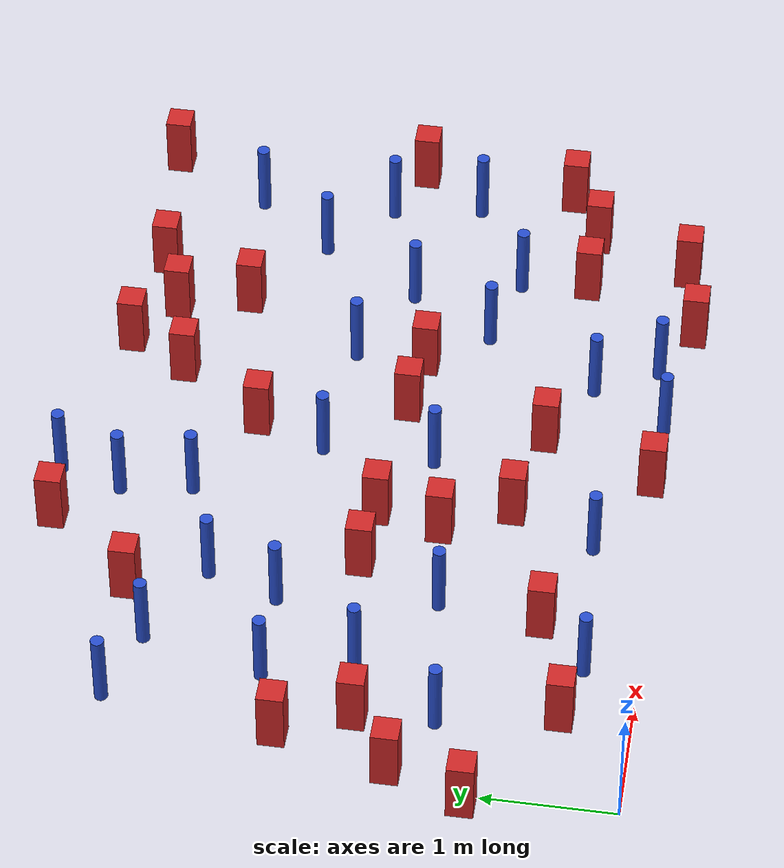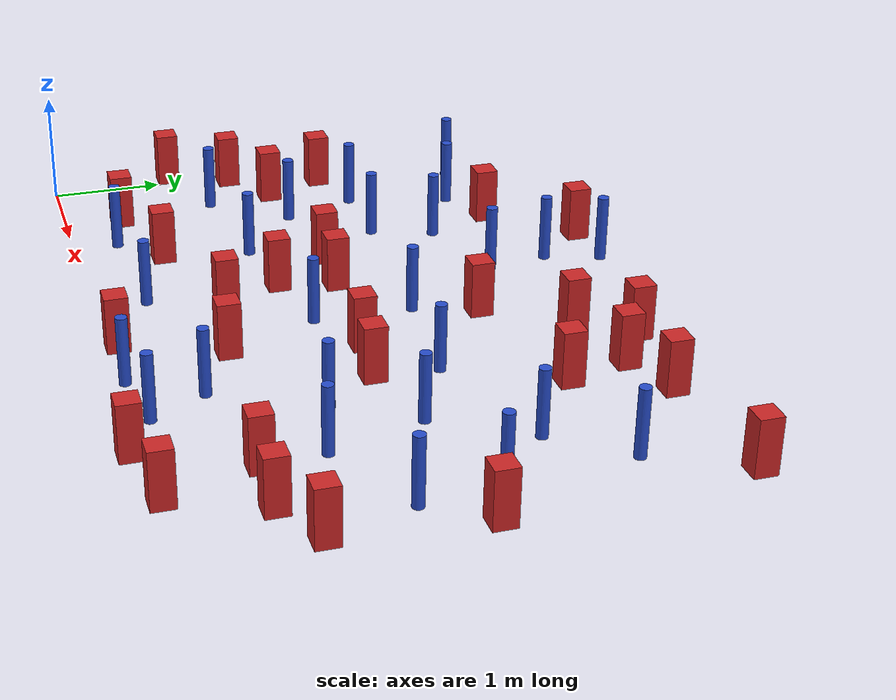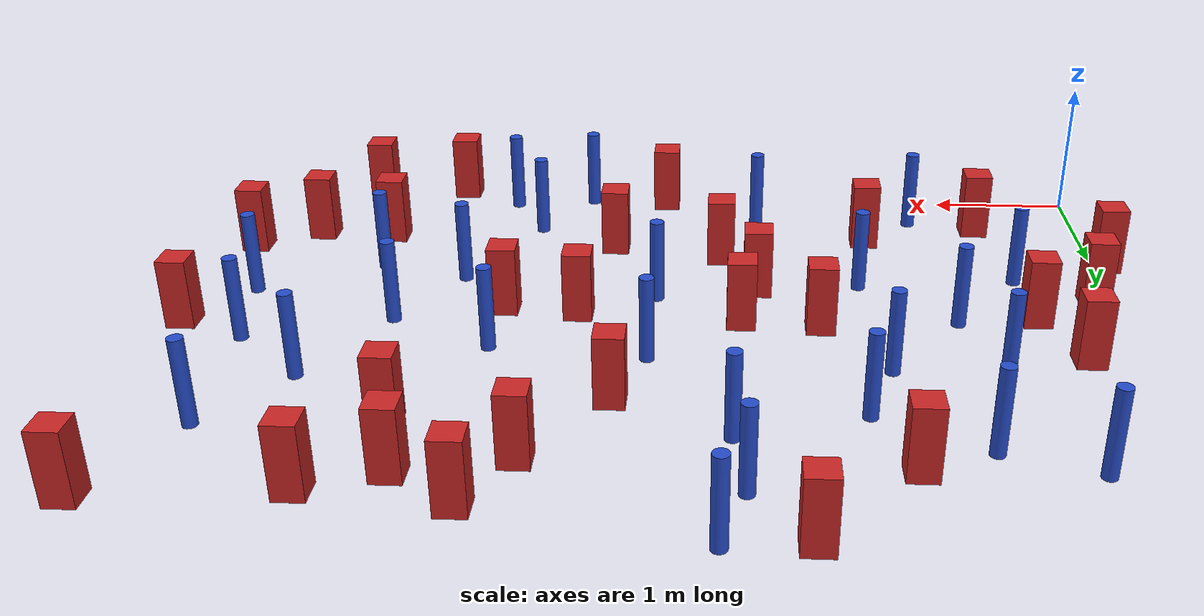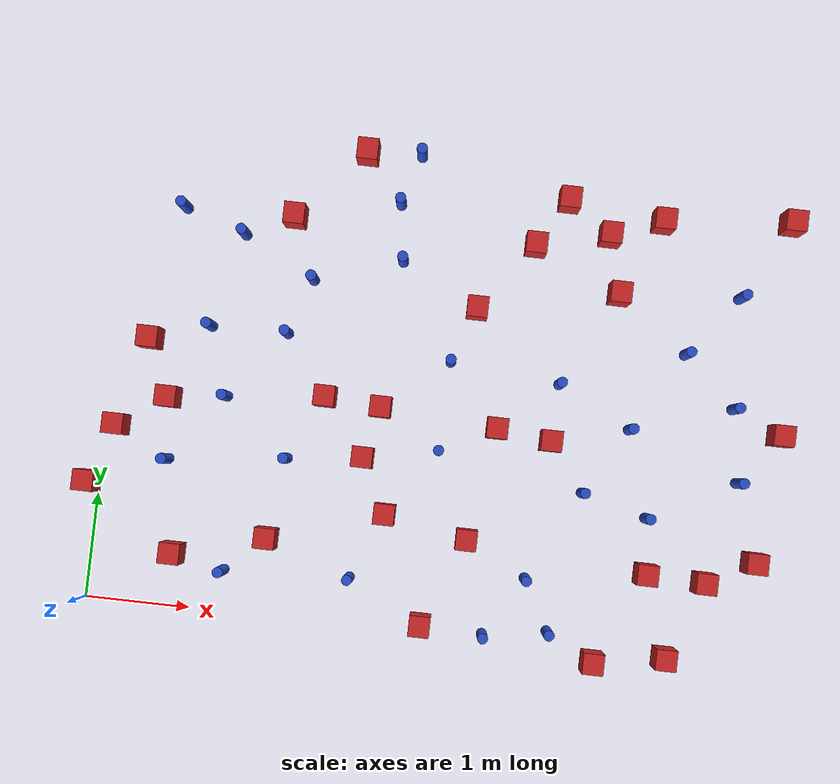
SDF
<sdf version="1.6">
 <model name="dense_18">
  <model name="pole_obstacle6">
   <static>true</static>
   <pose>3.22004854573 1.77578867734 7.38925637345e-09 -8.471706928e-08 1.24976765152e-08 -1.74513093012e-07</pose>
   <link name="link">
    <pose>0 0 0.3 0 -0 0</pose>
    <inertial>
     <mass>1</mass>
     <inertia><ixx>0.145833</ixx><ixy>0</ixy><ixz>0</ixz><iyy>0.145833</iyy><iyz>0</iyz><izz>0.125</izz></inertia>
    </inertial>
    <collision name="collision">
     <geometry><cylinder><radius>0.05</radius><length>.6</length></cylinder></geometry>
    </collision>
    <visual name="visual">
     <geometry><cylinder><radius>0.05</radius><length>.6</length></cylinder></geometry>
     <material>
      <script><name>Gazebo/Blue</name><uri>file://media/materials/scripts/gazebo.material</uri></script>
     </material>
    </visual>
   </link>
  </model>
  <model name="square_post_obstacle9">
   <static>true</static>
   <pose>5.31786729422 0.826178670648 1.91545236811e-07 -7.35059704564e-06 1.12565212e-07 2.39332434364e-05</pose>
   <link name="link">
    <pose>0 0 0.25 0 -0 0</pose>
    <inertial>
     <mass>100</mass>
     <inertia>
      <ixx>0.166667</ixx>
      <ixy>0</ixy>
      <ixz>0</ixz>
      <iyy>0.166667</iyy>
      <iyz>0</iyz>
      <izz>0.166667</izz>
     </inertia>
    </inertial>
    <collision name="collision"><geometry><box><size>.2 .2 .5</size></box></geometry></collision>
    <visual name="visual">
     <geometry><box><size>.2 .2 .5</size></box></geometry>
     <material>
      <script><name>Gazebo/Red</name><uri>file://media/materials/scripts/gazebo.material</uri></script>
     </material>
    </visual>
   </link>
  </model>
  <model name="pole_obstacle8">
   <static>true</static>
   <pose>5.99474519024 2.49112717704 7.38925637345e-09 -8.47170692798e-08 1.24976764937e-08 -1.74513093023e-07</pose>
   <link name="link">
    <pose>0 0 0.3 0 -0 0</pose>
    <inertial>
     <mass>1</mass>
     <inertia><ixx>0.145833</ixx><ixy>0</ixy><ixz>0</ixz><iyy>0.145833</iyy><iyz>0</iyz><izz>0.125</izz></inertia>
    </inertial>
    <collision name="collision">
     <geometry><cylinder><radius>0.05</radius><length>.6</length></cylinder></geometry>
    </collision>
    <visual name="visual">
     <geometry><cylinder><radius>0.05</radius><length>.6</length></cylinder></geometry>
     <material>
      <script><name>Gazebo/Blue</name><uri>file://media/materials/scripts/gazebo.material</uri></script>
     </material>
    </visual>
   </link>
  </model>
  <model name="square_post_obstacle14">
   <static>true</static>
   <pose>2.77395277355 1.11454945893 1.91545236811e-07 -7.35059704564e-06 1.12565212e-07 2.39332434364e-05</pose>
   <link name="link">
    <pose>0 0 0.25 0 -0 0</pose>
    <inertial>
     <mass>100</mass>
     <inertia>
      <ixx>0.166667</ixx>
      <ixy>0</ixy>
      <ixz>0</ixz>
      <iyy>0.166667</iyy>
      <iyz>0</iyz>
      <izz>0.166667</izz>
     </inertia>
    </inertial>
    <collision name="collision"><geometry><box><size>.2 .2 .5</size></box></geometry></collision>
    <visual name="visual">
     <geometry><box><size>.2 .2 .5</size></box></geometry>
     <material>
      <script><name>Gazebo/Red</name><uri>file://media/materials/scripts/gazebo.material</uri></script>
     </material>
    </visual>
   </link>
  </model>
  <model name="pole_obstacle12">
   <static>true</static>
   <pose>4.17921115617 0.650031408864 7.38925637345e-09 -8.47170692799e-08 1.24976765038e-08 -1.74513093018e-07</pose>
   <link name="link">
    <pose>0 0 0.3 0 -0 0</pose>
    <inertial>
     <mass>1</mass>
     <inertia><ixx>0.145833</ixx><ixy>0</ixy><ixz>0</ixz><iyy>0.145833</iyy><iyz>0</iyz><izz>0.125</izz></inertia>
    </inertial>
    <collision name="collision">
     <geometry><cylinder><radius>0.05</radius><length>.6</length></cylinder></geometry>
    </collision>
    <visual name="visual">
     <geometry><cylinder><radius>0.05</radius><length>.6</length></cylinder></geometry>
     <material>
      <script><name>Gazebo/Blue</name><uri>file://media/materials/scripts/gazebo.material</uri></script>
     </material>
    </visual>
   </link>
  </model>
  <model name="square_post_obstacle25">
   <static>true</static>
   <pose>2.6235593955 2.12843442732 1.91545236811e-07 -7.35059704564e-06 1.12565212e-07 2.39332434364e-05</pose>
   <link name="link">
    <pose>0 0 0.25 0 -0 0</pose>
    <inertial>
     <mass>100</mass>
     <inertia>
      <ixx>0.166667</ixx>
      <ixy>0</ixy>
      <ixz>0</ixz>
      <iyy>0.166667</iyy>
      <iyz>0</iyz>
      <izz>0.166667</izz>
     </inertia>
    </inertial>
    <collision name="collision"><geometry><box><size>.2 .2 .5</size></box></geometry></collision>
    <visual name="visual">
     <geometry><box><size>.2 .2 .5</size></box></geometry>
     <material>
      <script><name>Gazebo/Red</name><uri>file://media/materials/scripts/gazebo.material</uri></script>
     </material>
    </visual>
   </link>
  </model>
  <model name="pole_obstacle19">
   <static>true</static>
   <pose>0.542092980474 3.83562764258 7.38925637345e-09 -8.471706928e-08 1.2497676512e-08 -1.74513093015e-07</pose>
   <link name="link">
    <pose>0 0 0.3 0 -0 0</pose>
    <inertial>
     <mass>1</mass>
     <inertia><ixx>0.145833</ixx><ixy>0</ixy><ixz>0</ixz><iyy>0.145833</iyy><iyz>0</iyz><izz>0.125</izz></inertia>
    </inertial>
    <collision name="collision">
     <geometry><cylinder><radius>0.05</radius><length>.6</length></cylinder></geometry>
    </collision>
    <visual name="visual">
     <geometry><cylinder><radius>0.05</radius><length>.6</length></cylinder></geometry>
     <material>
      <script><name>Gazebo/Blue</name><uri>file://media/materials/scripts/gazebo.material</uri></script>
     </material>
    </visual>
   </link>
  </model>
  <model name="pole_obstacle29">
   <static>true</static>
   <pose>2.74446945684 4.58754578758 7.38925637345e-09 -8.47170692798e-08 1.24976765033e-08 -1.74513093019e-07</pose>
   <link name="link">
    <pose>0 0 0.3 0 -0 0</pose>
    <inertial>
     <mass>1</mass>
     <inertia><ixx>0.145833</ixx><ixy>0</ixy><ixz>0</ixz><iyy>0.145833</iyy><iyz>0</iyz><izz>0.125</izz></inertia>
    </inertial>
    <collision name="collision">
     <geometry><cylinder><radius>0.05</radius><length>.6</length></cylinder></geometry>
    </collision>
    <visual name="visual">
     <geometry><cylinder><radius>0.05</radius><length>.6</length></cylinder></geometry>
     <material>
      <script><name>Gazebo/Blue</name><uri>file://media/materials/scripts/gazebo.material</uri></script>
     </material>
    </visual>
   </link>
  </model>
  <model name="pole_obstacle35">
   <static>true</static>
   <pose>3.24041982638 2.63927868098 7.38925637345e-09 -8.47170692798e-08 1.24976764939e-08 -1.74513093025e-07</pose>
   <link name="link">
    <pose>0 0 0.3 0 -0 0</pose>
    <inertial>
     <mass>1</mass>
     <inertia><ixx>0.145833</ixx><ixy>0</ixy><ixz>0</ixz><iyy>0.145833</iyy><iyz>0</iyz><izz>0.125</izz></inertia>
    </inertial>
    <collision name="collision">
     <geometry><cylinder><radius>0.05</radius><length>.6</length></cylinder></geometry>
    </collision>
    <visual name="visual">
     <geometry><cylinder><radius>0.05</radius><length>.6</length></cylinder></geometry>
     <material>
      <script><name>Gazebo/Blue</name><uri>file://media/materials/scripts/gazebo.material</uri></script>
     </material>
    </visual>
   </link>
  </model>
  <model name="square_post_obstacle41">
   <static>true</static>
   <pose>5.88054170623 0.806153663585 1.91545236811e-07 -7.35059704564e-06 1.12565212e-07 2.39332434364e-05</pose>
   <link name="link">
    <pose>0 0 0.25 0 -0 0</pose>
    <inertial>
     <mass>100</mass>
     <inertia>
      <ixx>0.166667</ixx>
      <ixy>0</ixy>
      <ixz>0</ixz>
      <iyy>0.166667</iyy>
      <iyz>0</iyz>
      <izz>0.166667</izz>
     </inertia>
    </inertial>
    <collision name="collision"><geometry><box><size>.2 .2 .5</size></box></geometry></collision>
    <visual name="visual">
     <geometry><box><size>.2 .2 .5</size></box></geometry>
     <material>
      <script><name>Gazebo/Red</name><uri>file://media/materials/scripts/gazebo.material</uri></script>
     </material>
    </visual>
   </link>
  </model>
  <model name="square_post_obstacle48">
   <static>true</static>
   <pose>1.67553478204 0.7622134401 1.91545236811e-07 -7.35059704564e-06 1.12565212e-07 2.39332434364e-05</pose>
   <link name="link">
    <pose>0 0 0.25 0 -0 0</pose>
    <inertial>
     <mass>100</mass>
     <inertia>
      <ixx>0.166667</ixx>
      <ixy>0</ixy>
      <ixz>0</ixz>
      <iyy>0.166667</iyy>
      <iyz>0</iyz>
      <izz>0.166667</izz>
     </inertia>
    </inertial>
    <collision name="collision"><geometry><box><size>.2 .2 .5</size></box></geometry></collision>
    <visual name="visual">
     <geometry><box><size>.2 .2 .5</size></box></geometry>
     <material>
      <script><name>Gazebo/Red</name><uri>file://media/materials/scripts/gazebo.material</uri></script>
     </material>
    </visual>
   </link>
  </model>
  <model name="pole_obstacle50">
   <static>true</static>
   <pose>1.83860311054 3.27891546716 7.38925637345e-09 -8.47170692799e-08 1.24976765053e-08 -1.74513093017e-07</pose>
   <link name="link">
    <pose>0 0 0.3 0 -0 0</pose>
    <inertial>
     <mass>1</mass>
     <inertia><ixx>0.145833</ixx><ixy>0</ixy><ixz>0</ixz><iyy>0.145833</iyy><iyz>0</iyz><izz>0.125</izz></inertia>
    </inertial>
    <collision name="collision">
     <geometry><cylinder><radius>0.05</radius><length>.6</length></cylinder></geometry>
    </collision>
    <visual name="visual">
     <geometry><cylinder><radius>0.05</radius><length>.6</length></cylinder></geometry>
     <material>
      <script><name>Gazebo/Blue</name><uri>file://media/materials/scripts/gazebo.material</uri></script>
     </material>
    </visual>
   </link>
  </model>
  <model name="square_post_obstacle54">
   <static>true</static>
   <pose>4.8971762373 -0.0615124609382 1.91545236811e-07 -7.35059704564e-06 1.12565212e-07 2.39332434364e-05</pose>
   <link name="link">
    <pose>0 0 0.25 0 -0 0</pose>
    <inertial>
     <mass>100</mass>
     <inertia>
      <ixx>0.166667</ixx>
      <ixy>0</ixy>
      <ixz>0</ixz>
      <iyy>0.166667</iyy>
      <iyz>0</iyz>
      <izz>0.166667</izz>
     </inertia>
    </inertial>
    <collision name="collision"><geometry><box><size>.2 .2 .5</size></box></geometry></collision>
    <visual name="visual">
     <geometry><box><size>.2 .2 .5</size></box></geometry>
     <material>
      <script><name>Gazebo/Red</name><uri>file://media/materials/scripts/gazebo.material</uri></script>
     </material>
    </visual>
   </link>
  </model>
  <model name="square_post_obstacle56">
   <static>true</static>
   <pose>2.08354726394 2.17058025735 1.91545236811e-07 -7.35059704564e-06 1.12565212e-07 2.39332434364e-05</pose>
   <link name="link">
    <pose>0 0 0.25 0 -0 0</pose>
    <inertial>
     <mass>100</mass>
     <inertia>
      <ixx>0.166667</ixx>
      <ixy>0</ixy>
      <ixz>0</ixz>
      <iyy>0.166667</iyy>
      <iyz>0</iyz>
      <izz>0.166667</izz>
     </inertia>
    </inertial>
    <collision name="collision"><geometry><box><size>.2 .2 .5</size></box></geometry></collision>
    <visual name="visual">
     <geometry><box><size>.2 .2 .5</size></box></geometry>
     <material>
      <script><name>Gazebo/Red</name><uri>file://media/materials/scripts/gazebo.material</uri></script>
     </material>
    </visual>
   </link>
  </model>
  <model name="square_post_obstacle57">
   <static>true</static>
   <pose>-0.0899501214273 1.11651632364 1.91545236811e-07 -7.35059704564e-06 1.12565212e-07 2.39332434364e-05</pose>
   <link name="link">
    <pose>0 0 0.25 0 -0 0</pose>
    <inertial>
     <mass>100</mass>
     <inertia>
      <ixx>0.166667</ixx>
      <ixy>0</ixy>
      <ixz>0</ixz>
      <iyy>0.166667</iyy>
      <iyz>0</iyz>
      <izz>0.166667</izz>
     </inertia>
    </inertial>
    <collision name="collision"><geometry><box><size>.2 .2 .5</size></box></geometry></collision>
    <visual name="visual">
     <geometry><box><size>.2 .2 .5</size></box></geometry>
     <material>
      <script><name>Gazebo/Red</name><uri>file://media/materials/scripts/gazebo.material</uri></script>
     </material>
    </visual>
   </link>
  </model>
  <model name="square_post_obstacle58">
   <static>true</static>
   <pose>3.43550534589 3.17468039565 1.91545236811e-07 -7.35059704564e-06 1.12565212e-07 2.39332434364e-05</pose>
   <link name="link">
    <pose>0 0 0.25 0 -0 0</pose>
    <inertial>
     <mass>100</mass>
     <inertia>
      <ixx>0.166667</ixx>
      <ixy>0</ixy>
      <ixz>0</ixz>
      <iyy>0.166667</iyy>
      <iyz>0</iyz>
      <izz>0.166667</izz>
     </inertia>
    </inertial>
    <collision name="collision"><geometry><box><size>.2 .2 .5</size></box></geometry></collision>
    <visual name="visual">
     <geometry><box><size>.2 .2 .5</size></box></geometry>
     <material>
      <script><name>Gazebo/Red</name><uri>file://media/materials/scripts/gazebo.material</uri></script>
     </material>
    </visual>
   </link>
  </model>
  <model name="square_post_obstacle63">
   <static>true</static>
   <pose>4.62480884657 4.01783704354 1.91545236811e-07 -7.35059704564e-06 1.12565212e-07 2.39332434364e-05</pose>
   <link name="link">
    <pose>0 0 0.25 0 -0 0</pose>
    <inertial>
     <mass>100</mass>
     <inertia>
      <ixx>0.166667</ixx>
      <ixy>0</ixy>
      <ixz>0</ixz>
      <iyy>0.166667</iyy>
      <iyz>0</iyz>
      <izz>0.166667</izz>
     </inertia>
    </inertial>
    <collision name="collision"><geometry><box><size>.2 .2 .5</size></box></geometry></collision>
    <visual name="visual">
     <geometry><box><size>.2 .2 .5</size></box></geometry>
     <material>
      <script><name>Gazebo/Red</name><uri>file://media/materials/scripts/gazebo.material</uri></script>
     </material>
    </visual>
   </link>
  </model>
  <model name="square_post_obstacle73">
   <static>true</static>
   <pose>3.22530703558 0.104143417249 1.91545236811e-07 -7.35059704564e-06 1.12565212e-07 2.39332434364e-05</pose>
   <link name="link">
    <pose>0 0 0.25 0 -0 0</pose>
    <inertial>
     <mass>100</mass>
     <inertia>
      <ixx>0.166667</ixx>
      <ixy>0</ixy>
      <ixz>0</ixz>
      <iyy>0.166667</iyy>
      <iyz>0</iyz>
      <izz>0.166667</izz>
     </inertia>
    </inertial>
    <collision name="collision"><geometry><box><size>.2 .2 .5</size></box></geometry></collision>
    <visual name="visual">
     <geometry><box><size>.2 .2 .5</size></box></geometry>
     <material>
      <script><name>Gazebo/Red</name><uri>file://media/materials/scripts/gazebo.material</uri></script>
     </material>
    </visual>
   </link>
  </model>
  <model name="pole_obstacle72">
   <static>true</static>
   <pose>2.59559224451 4.10149492091 7.38925637345e-09 -8.47170692798e-08 1.24976765033e-08 -1.74513093019e-07</pose>
   <link name="link">
    <pose>0 0 0.3 0 -0 0</pose>
    <inertial>
     <mass>1</mass>
     <inertia><ixx>0.145833</ixx><ixy>0</ixy><ixz>0</ixz><iyy>0.145833</iyy><iyz>0</iyz><izz>0.125</izz></inertia>
    </inertial>
    <collision name="collision">
     <geometry><cylinder><radius>0.05</radius><length>.6</length></cylinder></geometry>
    </collision>
    <visual name="visual">
     <geometry><cylinder><radius>0.05</radius><length>.6</length></cylinder></geometry>
     <material>
      <script><name>Gazebo/Blue</name><uri>file://media/materials/scripts/gazebo.material</uri></script>
     </material>
    </visual>
   </link>
  </model>
  <model name="pole_obstacle77">
   <static>true</static>
   <pose>4.3042402831 2.54303743391 7.38925637345e-09 -8.47170692798e-08 1.24976764937e-08 -1.74513093023e-07</pose>
   <link name="link">
    <pose>0 0 0.3 0 -0 0</pose>
    <inertial>
     <mass>1</mass>
     <inertia><ixx>0.145833</ixx><ixy>0</ixy><ixz>0</ixz><iyy>0.145833</iyy><iyz>0</iyz><izz>0.125</izz></inertia>
    </inertial>
    <collision name="collision">
     <geometry><cylinder><radius>0.05</radius><length>.6</length></cylinder></geometry>
    </collision>
    <visual name="visual">
     <geometry><cylinder><radius>0.05</radius><length>.6</length></cylinder></geometry>
     <material>
      <script><name>Gazebo/Blue</name><uri>file://media/materials/scripts/gazebo.material</uri></script>
     </material>
    </visual>
   </link>
  </model>
  <model name="pole_obstacle79">
   <static>true</static>
   <pose>1.77513440076 1.53834636162 7.38925637345e-09 -8.471706928e-08 1.24976765079e-08 -1.74513093017e-07</pose>
   <link name="link">
    <pose>0 0 0.3 0 -0 0</pose>
    <inertial>
     <mass>1</mass>
     <inertia><ixx>0.145833</ixx><ixy>0</ixy><ixz>0</ixz><iyy>0.145833</iyy><iyz>0</iyz><izz>0.125</izz></inertia>
    </inertial>
    <collision name="collision">
     <geometry><cylinder><radius>0.05</radius><length>.6</length></cylinder></geometry>
    </collision>
    <visual name="visual">
     <geometry><cylinder><radius>0.05</radius><length>.6</length></cylinder></geometry>
     <material>
      <script><name>Gazebo/Blue</name><uri>file://media/materials/scripts/gazebo.material</uri></script>
     </material>
    </visual>
   </link>
  </model>
  <model name="pole_obstacle81">
   <static>true</static>
   <pose>2.67766484859 3.55280561187 7.38925637345e-09 -8.47170692798e-08 1.24976764939e-08 -1.74513093025e-07</pose>
   <link name="link">
    <pose>0 0 0.3 0 -0 0</pose>
    <inertial>
     <mass>1</mass>
     <inertia><ixx>0.145833</ixx><ixy>0</ixy><ixz>0</ixz><iyy>0.145833</iyy><iyz>0</iyz><izz>0.125</izz></inertia>
    </inertial>
    <collision name="collision">
     <geometry><cylinder><radius>0.05</radius><length>.6</length></cylinder></geometry>
    </collision>
    <visual name="visual">
     <geometry><cylinder><radius>0.05</radius><length>.6</length></cylinder></geometry>
     <material>
      <script><name>Gazebo/Blue</name><uri>file://media/materials/scripts/gazebo.material</uri></script>
     </material>
    </visual>
   </link>
  </model>
  <model name="pole_obstacle87">
   <static>true</static>
   <pose>1.13121682238 2.06816425038 7.38925637345e-09 -8.47170692799e-08 1.24976765053e-08 -1.74513093017e-07</pose>
   <link name="link">
    <pose>0 0 0.3 0 -0 0</pose>
    <inertial>
     <mass>1</mass>
     <inertia><ixx>0.145833</ixx><ixy>0</ixy><ixz>0</ixz><iyy>0.145833</iyy><iyz>0</iyz><izz>0.125</izz></inertia>
    </inertial>
    <collision name="collision">
     <geometry><cylinder><radius>0.05</radius><length>.6</length></cylinder></geometry>
    </collision>
    <visual name="visual">
     <geometry><cylinder><radius>0.05</radius><length>.6</length></cylinder></geometry>
     <material>
      <script><name>Gazebo/Blue</name><uri>file://media/materials/scripts/gazebo.material</uri></script>
     </material>
    </visual>
   </link>
  </model>
  <model name="pole_obstacle91">
   <static>true</static>
   <pose>1.29070093933 0.403606654676 7.38925637345e-09 -8.47170692799e-08 1.24976765065e-08 -1.74513093017e-07</pose>
   <link name="link">
    <pose>0 0 0.3 0 -0 0</pose>
    <inertial>
     <mass>1</mass>
     <inertia><ixx>0.145833</ixx><ixy>0</ixy><ixz>0</ixz><iyy>0.145833</iyy><iyz>0</iyz><izz>0.125</izz></inertia>
    </inertial>
    <collision name="collision">
     <geometry><cylinder><radius>0.05</radius><length>.6</length></cylinder></geometry>
    </collision>
    <visual name="visual">
     <geometry><cylinder><radius>0.05</radius><length>.6</length></cylinder></geometry>
     <material>
      <script><name>Gazebo/Blue</name><uri>file://media/materials/scripts/gazebo.material</uri></script>
     </material>
    </visual>
   </link>
  </model>
  <model name="pole_obstacle93">
   <static>true</static>
   <pose>5.48030016622 2.96484628463 7.38925637345e-09 -8.47170692798e-08 1.24976764937e-08 -1.74513093023e-07</pose>
   <link name="link">
    <pose>0 0 0.3 0 -0 0</pose>
    <inertial>
     <mass>1</mass>
     <inertia><ixx>0.145833</ixx><ixy>0</ixy><ixz>0</ixz><iyy>0.145833</iyy><iyz>0</iyz><izz>0.125</izz></inertia>
    </inertial>
    <collision name="collision">
     <geometry><cylinder><radius>0.05</radius><length>.6</length></cylinder></geometry>
    </collision>
    <visual name="visual">
     <geometry><cylinder><radius>0.05</radius><length>.6</length></cylinder></geometry>
     <material>
      <script><name>Gazebo/Blue</name><uri>file://media/materials/scripts/gazebo.material</uri></script>
     </material>
    </visual>
   </link>
  </model>
  <model name="square_post_obstacle84">
   <static>true</static>
   <pose>0.799262532163 0.520414767857 1.91545236811e-07 -7.35059704564e-06 1.12565212e-07 2.39332434364e-05</pose>
   <link name="link">
    <pose>0 0 0.25 0 -0 0</pose>
    <inertial>
     <mass>100</mass>
     <inertia>
      <ixx>0.166667</ixx>
      <ixy>0</ixy>
      <ixz>0</ixz>
      <iyy>0.166667</iyy>
      <iyz>0</iyz>
      <izz>0.166667</izz>
     </inertia>
    </inertial>
    <collision name="collision"><geometry><box><size>.2 .2 .5</size></box></geometry></collision>
    <visual name="visual">
     <geometry><box><size>.2 .2 .5</size></box></geometry>
     <material>
      <script><name>Gazebo/Red</name><uri>file://media/materials/scripts/gazebo.material</uri></script>
     </material>
    </visual>
   </link>
  </model>
  <model name="pole_obstacle98">
   <static>true</static>
   <pose>4.44561478383 0.167517646623 7.38925637345e-09 -8.47170692801e-08 1.24976765186e-08 -1.74513093012e-07</pose>
   <link name="link">
    <pose>0 0 0.3 0 -0 0</pose>
    <inertial>
     <mass>1</mass>
     <inertia><ixx>0.145833</ixx><ixy>0</ixy><ixz>0</ixz><iyy>0.145833</iyy><iyz>0</iyz><izz>0.125</izz></inertia>
    </inertial>
    <collision name="collision">
     <geometry><cylinder><radius>0.05</radius><length>.6</length></cylinder></geometry>
    </collision>
    <visual name="visual">
     <geometry><cylinder><radius>0.05</radius><length>.6</length></cylinder></geometry>
     <material>
      <script><name>Gazebo/Blue</name><uri>file://media/materials/scripts/gazebo.material</uri></script>
     </material>
    </visual>
   </link>
  </model>
  <model name="pole_obstacle101">
   <static>true</static>
   <pose>1.13627000548 3.64099175233 7.38925637345e-09 -8.47170692799e-08 1.24976765053e-08 -1.74513093017e-07</pose>
   <link name="link">
    <pose>0 0 0.3 0 -0 0</pose>
    <inertial>
     <mass>1</mass>
     <inertia><ixx>0.145833</ixx><ixy>0</ixy><ixz>0</ixz><iyy>0.145833</iyy><iyz>0</iyz><izz>0.125</izz></inertia>
    </inertial>
    <collision name="collision">
     <geometry><cylinder><radius>0.05</radius><length>.6</length></cylinder></geometry>
    </collision>
    <visual name="visual">
     <geometry><cylinder><radius>0.05</radius><length>.6</length></cylinder></geometry>
     <material>
      <script><name>Gazebo/Blue</name><uri>file://media/materials/scripts/gazebo.material</uri></script>
     </material>
    </visual>
   </link>
  </model>
  <model name="pole_obstacle105">
   <static>true</static>
   <pose>0.637186168356 1.4061226813 7.38925637345e-09 -8.47170692799e-08 1.24976765033e-08 -1.7451309302e-07</pose>
   <link name="link">
    <pose>0 0 0.3 0 -0 0</pose>
    <inertial>
     <mass>1</mass>
     <inertia><ixx>0.145833</ixx><ixy>0</ixy><ixz>0</ixz><iyy>0.145833</iyy><iyz>0</iyz><izz>0.125</izz></inertia>
    </inertial>
    <collision name="collision">
     <geometry><cylinder><radius>0.05</radius><length>.6</length></cylinder></geometry>
    </collision>
    <visual name="visual">
     <geometry><cylinder><radius>0.05</radius><length>.6</length></cylinder></geometry>
     <material>
      <script><name>Gazebo/Blue</name><uri>file://media/materials/scripts/gazebo.material</uri></script>
     </material>
    </visual>
   </link>
  </model>
  <model name="square_post_obstacle113">
   <static>true</static>
   <pose>3.75170039677 2.05041710894 1.91545236811e-07 -7.35059704564e-06 1.12565212e-07 2.39332434364e-05</pose>
   <link name="link">
    <pose>0 0 0.25 0 -0 0</pose>
    <inertial>
     <mass>100</mass>
     <inertia>
      <ixx>0.166667</ixx>
      <ixy>0</ixy>
      <ixz>0</ixz>
      <iyy>0.166667</iyy>
      <iyz>0</iyz>
      <izz>0.166667</izz>
     </inertia>
    </inertial>
    <collision name="collision"><geometry><box><size>.2 .2 .5</size></box></geometry></collision>
    <visual name="visual">
     <geometry><box><size>.2 .2 .5</size></box></geometry>
     <material>
      <script><name>Gazebo/Red</name><uri>file://media/materials/scripts/gazebo.material</uri></script>
     </material>
    </visual>
   </link>
  </model>
  <model name="square_post_obstacle114">
   <static>true</static>
   <pose>2.22829622372 4.54669337716 1.91545236811e-07 -7.35059704564e-06 1.12565212e-07 2.39332434364e-05</pose>
   <link name="link">
    <pose>0 0 0.25 0 -0 0</pose>
    <inertial>
     <mass>100</mass>
     <inertia>
      <ixx>0.166667</ixx>
      <ixy>0</ixy>
      <ixz>0</ixz>
      <iyy>0.166667</iyy>
      <iyz>0</iyz>
      <izz>0.166667</izz>
     </inertia>
    </inertial>
    <collision name="collision"><geometry><box><size>.2 .2 .5</size></box></geometry></collision>
    <visual name="visual">
     <geometry><box><size>.2 .2 .5</size></box></geometry>
     <material>
      <script><name>Gazebo/Red</name><uri>file://media/materials/scripts/gazebo.material</uri></script>
     </material>
    </visual>
   </link>
  </model>
  <model name="pole_obstacle134">
   <static>true</static>
   <pose>0.908390922016 2.72489442957 7.38925637345e-09 -8.47170692799e-08 1.2497676509e-08 -1.74513093016e-07</pose>
   <link name="link">
    <pose>0 0 0.3 0 -0 0</pose>
    <inertial>
     <mass>1</mass>
     <inertia><ixx>0.145833</ixx><ixy>0</ixy><ixz>0</ixz><iyy>0.145833</iyy><iyz>0</iyz><izz>0.125</izz></inertia>
    </inertial>
    <collision name="collision">
     <geometry><cylinder><radius>0.05</radius><length>.6</length></cylinder></geometry>
    </collision>
    <visual name="visual">
     <geometry><cylinder><radius>0.05</radius><length>.6</length></cylinder></geometry>
     <material>
      <script><name>Gazebo/Blue</name><uri>file://media/materials/scripts/gazebo.material</uri></script>
     </material>
    </visual>
   </link>
  </model>
  <model name="pole_obstacle136">
   <static>true</static>
   <pose>4.63659994866 1.52872575339 7.38925637345e-09 -8.471706928e-08 1.24976765134e-08 -1.74513093015e-07</pose>
   <link name="link">
    <pose>0 0 0.3 0 -0 0</pose>
    <inertial>
     <mass>1</mass>
     <inertia><ixx>0.145833</ixx><ixy>0</ixy><ixz>0</ixz><iyy>0.145833</iyy><iyz>0</iyz><izz>0.125</izz></inertia>
    </inertial>
    <collision name="collision">
     <geometry><cylinder><radius>0.05</radius><length>.6</length></cylinder></geometry>
    </collision>
    <visual name="visual">
     <geometry><cylinder><radius>0.05</radius><length>.6</length></cylinder></geometry>
     <material>
      <script><name>Gazebo/Blue</name><uri>file://media/materials/scripts/gazebo.material</uri></script>
     </material>
    </visual>
   </link>
  </model>
  <model name="square_post_obstacle118">
   <static>true</static>
   <pose>0.126217001469 1.68402264439 1.91545236811e-07 -7.35059704564e-06 1.12565212e-07 2.39332434364e-05</pose>
   <link name="link">
    <pose>0 0 0.25 0 -0 0</pose>
    <inertial>
     <mass>100</mass>
     <inertia>
      <ixx>0.166667</ixx>
      <ixy>0</ixy>
      <ixz>0</ixz>
      <iyy>0.166667</iyy>
      <iyz>0</iyz>
      <izz>0.166667</izz>
     </inertia>
    </inertial>
    <collision name="collision"><geometry><box><size>.2 .2 .5</size></box></geometry></collision>
    <visual name="visual">
     <geometry><box><size>.2 .2 .5</size></box></geometry>
     <material>
      <script><name>Gazebo/Red</name><uri>file://media/materials/scripts/gazebo.material</uri></script>
     </material>
    </visual>
   </link>
  </model>
  <model name="square_post_obstacle122">
   <static>true</static>
   <pose>4.20020343553 4.3084659481 1.91545236811e-07 -7.35059704564e-06 1.12565212e-07 2.39332434364e-05</pose>
   <link name="link">
    <pose>0 0 0.25 0 -0 0</pose>
    <inertial>
     <mass>100</mass>
     <inertia>
      <ixx>0.166667</ixx>
      <ixy>0</ixy>
      <ixz>0</ixz>
      <iyy>0.166667</iyy>
      <iyz>0</iyz>
      <izz>0.166667</izz>
     </inertia>
    </inertial>
    <collision name="collision"><geometry><box><size>.2 .2 .5</size></box></geometry></collision>
    <visual name="visual">
     <geometry><box><size>.2 .2 .5</size></box></geometry>
     <material>
      <script><name>Gazebo/Red</name><uri>file://media/materials/scripts/gazebo.material</uri></script>
     </material>
    </visual>
   </link>
  </model>
  <model name="pole_obstacle142">
   <static>true</static>
   <pose>5.02172992878 2.18454908833 7.38925637345e-09 -8.47170692798e-08 1.24976764937e-08 -1.74513093023e-07</pose>
   <link name="link">
    <pose>0 0 0.3 0 -0 0</pose>
    <inertial>
     <mass>1</mass>
     <inertia><ixx>0.145833</ixx><ixy>0</ixy><ixz>0</ixz><iyy>0.145833</iyy><iyz>0</iyz><izz>0.125</izz></inertia>
    </inertial>
    <collision name="collision">
     <geometry><cylinder><radius>0.05</radius><length>.6</length></cylinder></geometry>
    </collision>
    <visual name="visual">
     <geometry><cylinder><radius>0.05</radius><length>.6</length></cylinder></geometry>
     <material>
      <script><name>Gazebo/Blue</name><uri>file://media/materials/scripts/gazebo.material</uri></script>
     </material>
    </visual>
   </link>
  </model>
  <model name="square_post_obstacle134">
   <static>true</static>
   <pose>5.11945308864 4.20712000321 1.91545236811e-07 -7.35059704564e-06 1.12565212e-07 2.39332434364e-05</pose>
   <link name="link">
    <pose>0 0 0.25 0 -0 0</pose>
    <inertial>
     <mass>100</mass>
     <inertia>
      <ixx>0.166667</ixx>
      <ixy>0</ixy>
      <ixz>0</ixz>
      <iyy>0.166667</iyy>
      <iyz>0</iyz>
      <izz>0.166667</izz>
     </inertia>
    </inertial>
    <collision name="collision"><geometry><box><size>.2 .2 .5</size></box></geometry></collision>
    <visual name="visual">
     <geometry><box><size>.2 .2 .5</size></box></geometry>
     <material>
      <script><name>Gazebo/Red</name><uri>file://media/materials/scripts/gazebo.material</uri></script>
     </material>
    </visual>
   </link>
  </model>
  <model name="pole_obstacle148">
   <static>true</static>
   <pose>2.50231707876 0.468543024932 7.38925637345e-09 -8.47170692801e-08 1.24976765209e-08 -1.74513093011e-07</pose>
   <link name="link">
    <pose>0 0 0.3 0 -0 0</pose>
    <inertial>
     <mass>1</mass>
     <inertia><ixx>0.145833</ixx><ixy>0</ixy><ixz>0</ixz><iyy>0.145833</iyy><iyz>0</iyz><izz>0.125</izz></inertia>
    </inertial>
    <collision name="collision">
     <geometry><cylinder><radius>0.05</radius><length>.6</length></cylinder></geometry>
    </collision>
    <visual name="visual">
     <geometry><cylinder><radius>0.05</radius><length>.6</length></cylinder></geometry>
     <material>
      <script><name>Gazebo/Blue</name><uri>file://media/materials/scripts/gazebo.material</uri></script>
     </material>
    </visual>
   </link>
  </model>
  <model name="pole_obstacle149">
   <static>true</static>
   <pose>5.94435799046 3.56068486577 7.38925637345e-09 -8.47170692798e-08 1.24976764937e-08 -1.74513093023e-07</pose>
   <link name="link">
    <pose>0 0 0.3 0 -0 0</pose>
    <inertial>
     <mass>1</mass>
     <inertia><ixx>0.145833</ixx><ixy>0</ixy><ixz>0</ixz><iyy>0.145833</iyy><iyz>0</iyz><izz>0.125</izz></inertia>
    </inertial>
    <collision name="collision">
     <geometry><cylinder><radius>0.05</radius><length>.6</length></cylinder></geometry>
    </collision>
    <visual name="visual">
     <geometry><cylinder><radius>0.05</radius><length>.6</length></cylinder></geometry>
     <material>
      <script><name>Gazebo/Blue</name><uri>file://media/materials/scripts/gazebo.material</uri></script>
     </material>
    </visual>
   </link>
  </model>
  <model name="square_post_obstacle149">
   <static>true</static>
   <pose>3.57648495985 0.961425865712 1.91545236811e-07 -7.35059704564e-06 1.12565212e-07 2.39332434364e-05</pose>
   <link name="link">
    <pose>0 0 0.25 0 -0 0</pose>
    <inertial>
     <mass>100</mass>
     <inertia>
      <ixx>0.166667</ixx>
      <ixy>0</ixy>
      <ixz>0</ixz>
      <iyy>0.166667</iyy>
      <iyz>0</iyz>
      <izz>0.166667</izz>
     </inertia>
    </inertial>
    <collision name="collision"><geometry><box><size>.2 .2 .5</size></box></geometry></collision>
    <visual name="visual">
     <geometry><box><size>.2 .2 .5</size></box></geometry>
     <material>
      <script><name>Gazebo/Red</name><uri>file://media/materials/scripts/gazebo.material</uri></script>
     </material>
    </visual>
   </link>
  </model>
  <model name="square_post_obstacle154">
   <static>true</static>
   <pose>5.57673047773 0.0523164664692 1.91545236811e-07 -7.35059704564e-06 1.12565212e-07 2.39332434364e-05</pose>
   <link name="link">
    <pose>0 0 0.25 0 -0 0</pose>
    <inertial>
     <mass>100</mass>
     <inertia>
      <ixx>0.166667</ixx>
      <ixy>0</ixy>
      <ixz>0</ixz>
      <iyy>0.166667</iyy>
      <iyz>0</iyz>
      <izz>0.166667</izz>
     </inertia>
    </inertial>
    <collision name="collision"><geometry><box><size>.2 .2 .5</size></box></geometry></collision>
    <visual name="visual">
     <geometry><box><size>.2 .2 .5</size></box></geometry>
     <material>
      <script><name>Gazebo/Red</name><uri>file://media/materials/scripts/gazebo.material</uri></script>
     </material>
    </visual>
   </link>
  </model>
  <model name="pole_obstacle177">
   <static>true</static>
   <pose>6.10842906281 1.78926941349 7.38925637345e-09 -8.471706928e-08 1.24976765134e-08 -1.74513093015e-07</pose>
   <link name="link">
    <pose>0 0 0.3 0 -0 0</pose>
    <inertial>
     <mass>1</mass>
     <inertia><ixx>0.145833</ixx><ixy>0</ixy><ixz>0</ixz><iyy>0.145833</iyy><iyz>0</iyz><izz>0.125</izz></inertia>
    </inertial>
    <collision name="collision">
     <geometry><cylinder><radius>0.05</radius><length>.6</length></cylinder></geometry>
    </collision>
    <visual name="visual">
     <geometry><cylinder><radius>0.05</radius><length>.6</length></cylinder></geometry>
     <material>
      <script><name>Gazebo/Blue</name><uri>file://media/materials/scripts/gazebo.material</uri></script>
     </material>
    </visual>
   </link>
  </model>
  <model name="square_post_obstacle178">
   <static>true</static>
   <pose>3.92685463476 3.84357603842 1.91545236811e-07 -7.35059704564e-06 1.12565212e-07 2.39332434364e-05</pose>
   <link name="link">
    <pose>0 0 0.25 0 -0 0</pose>
    <inertial>
     <mass>100</mass>
     <inertia>
      <ixx>0.166667</ixx>
      <ixy>0</ixy>
      <ixz>0</ixz>
      <iyy>0.166667</iyy>
      <iyz>0</iyz>
      <izz>0.166667</izz>
     </inertia>
    </inertial>
    <collision name="collision"><geometry><box><size>.2 .2 .5</size></box></geometry></collision>
    <visual name="visual">
     <geometry><box><size>.2 .2 .5</size></box></geometry>
     <material>
      <script><name>Gazebo/Red</name><uri>file://media/materials/scripts/gazebo.material</uri></script>
     </material>
    </visual>
   </link>
  </model>
  <model name="square_post_obstacle182">
   <static>true</static>
   <pose>6.33742854047 1.04791664392 1.91545236811e-07 -7.35059704564e-06 1.12565212e-07 2.39332434364e-05</pose>
   <link name="link">
    <pose>0 0 0.25 0 -0 0</pose>
    <inertial>
     <mass>100</mass>
     <inertia>
      <ixx>0.166667</ixx>
      <ixy>0</ixy>
      <ixz>0</ixz>
      <iyy>0.166667</iyy>
      <iyz>0</iyz>
      <izz>0.166667</izz>
     </inertia>
    </inertial>
    <collision name="collision"><geometry><box><size>.2 .2 .5</size></box></geometry></collision>
    <visual name="visual">
     <geometry><box><size>.2 .2 .5</size></box></geometry>
     <material>
      <script><name>Gazebo/Red</name><uri>file://media/materials/scripts/gazebo.material</uri></script>
     </material>
    </visual>
   </link>
  </model>
  <model name="square_post_obstacle187">
   <static>true</static>
   <pose>1.60410186637 3.85938114684 1.91545236811e-07 -7.35059704564e-06 1.12565212e-07 2.39332434364e-05</pose>
   <link name="link">
    <pose>0 0 0.25 0 -0 0</pose>
    <inertial>
     <mass>100</mass>
     <inertia>
      <ixx>0.166667</ixx>
      <ixy>0</ixy>
      <ixz>0</ixz>
      <iyy>0.166667</iyy>
      <iyz>0</iyz>
      <izz>0.166667</izz>
     </inertia>
    </inertial>
    <collision name="collision"><geometry><box><size>.2 .2 .5</size></box></geometry></collision>
    <visual name="visual">
     <geometry><box><size>.2 .2 .5</size></box></geometry>
     <material>
      <script><name>Gazebo/Red</name><uri>file://media/materials/scripts/gazebo.material</uri></script>
     </material>
    </visual>
   </link>
  </model>
  <model name="square_post_obstacle188">
   <static>true</static>
   <pose>6.45697858466 2.28376051371 1.91545236811e-07 -7.35059704564e-06 1.12565212e-07 2.39332434364e-05</pose>
   <link name="link">
    <pose>0 0 0.25 0 -0 0</pose>
    <inertial>
     <mass>100</mass>
     <inertia>
      <ixx>0.166667</ixx>
      <ixy>0</ixy>
      <ixz>0</ixz>
      <iyy>0.166667</iyy>
      <iyz>0</iyz>
      <izz>0.166667</izz>
     </inertia>
    </inertial>
    <collision name="collision"><geometry><box><size>.2 .2 .5</size></box></geometry></collision>
    <visual name="visual">
     <geometry><box><size>.2 .2 .5</size></box></geometry>
     <material>
      <script><name>Gazebo/Red</name><uri>file://media/materials/scripts/gazebo.material</uri></script>
     </material>
    </visual>
   </link>
  </model>
  <model name="square_post_obstacle189">
   <static>true</static>
   <pose>4.27634494978 1.98815845714 1.91545236811e-07 -7.35059704564e-06 1.12565212e-07 2.39332434364e-05</pose>
   <link name="link">
    <pose>0 0 0.25 0 -0 0</pose>
    <inertial>
     <mass>100</mass>
     <inertia>
      <ixx>0.166667</ixx>
      <ixy>0</ixy>
      <ixz>0</ixz>
      <iyy>0.166667</iyy>
      <iyz>0</iyz>
      <izz>0.166667</izz>
     </inertia>
    </inertial>
    <collision name="collision"><geometry><box><size>.2 .2 .5</size></box></geometry></collision>
    <visual name="visual">
     <geometry><box><size>.2 .2 .5</size></box></geometry>
     <material>
      <script><name>Gazebo/Red</name><uri>file://media/materials/scripts/gazebo.material</uri></script>
     </material>
    </visual>
   </link>
  </model>
  <model name="square_post_obstacle204">
   <static>true</static>
   <pose>2.50586701558 1.63095331012 1.91545236811e-07 -7.35059704564e-06 1.12565212e-07 2.39332434364e-05</pose>
   <link name="link">
    <pose>0 0 0.25 0 -0 0</pose>
    <inertial>
     <mass>100</mass>
     <inertia>
      <ixx>0.166667</ixx>
      <ixy>0</ixy>
      <ixz>0</ixz>
      <iyy>0.166667</iyy>
      <iyz>0</iyz>
      <izz>0.166667</izz>
     </inertia>
    </inertial>
    <collision name="collision"><geometry><box><size>.2 .2 .5</size></box></geometry></collision>
    <visual name="visual">
     <geometry><box><size>.2 .2 .5</size></box></geometry>
     <material>
      <script><name>Gazebo/Red</name><uri>file://media/materials/scripts/gazebo.material</uri></script>
     </material>
    </visual>
   </link>
  </model>
  <model name="square_post_obstacle205">
   <static>true</static>
   <pose>0.591587658816 1.9988092113 1.91545236811e-07 -7.35059704564e-06 1.12565212e-07 2.39332434364e-05</pose>
   <link name="link">
    <pose>0 0 0.25 0 -0 0</pose>
    <inertial>
     <mass>100</mass>
     <inertia>
      <ixx>0.166667</ixx>
      <ixy>0</ixy>
      <ixz>0</ixz>
      <iyy>0.166667</iyy>
      <iyz>0</iyz>
      <izz>0.166667</izz>
     </inertia>
    </inertial>
    <collision name="collision"><geometry><box><size>.2 .2 .5</size></box></geometry></collision>
    <visual name="visual">
     <geometry><box><size>.2 .2 .5</size></box></geometry>
     <material>
      <script><name>Gazebo/Red</name><uri>file://media/materials/scripts/gazebo.material</uri></script>
     </material>
    </visual>
   </link>
  </model>
  <model name="square_post_obstacle206">
   <static>true</static>
   <pose>0.353870982407 2.54080616968 1.91545236811e-07 -7.35059704564e-06 1.12565212e-07 2.39332434364e-05</pose>
   <link name="link">
    <pose>0 0 0.25 0 -0 0</pose>
    <inertial>
     <mass>100</mass>
     <inertia>
      <ixx>0.166667</ixx>
      <ixy>0</ixy>
      <ixz>0</ixz>
      <iyy>0.166667</iyy>
      <iyz>0</iyz>
      <izz>0.166667</izz>
     </inertia>
    </inertial>
    <collision name="collision"><geometry><box><size>.2 .2 .5</size></box></geometry></collision>
    <visual name="visual">
     <geometry><box><size>.2 .2 .5</size></box></geometry>
     <material>
      <script><name>Gazebo/Red</name><uri>file://media/materials/scripts/gazebo.material</uri></script>
     </material>
    </visual>
   </link>
  </model>
  <model name="square_post_obstacle209">
   <static>true</static>
   <pose>4.77513317206 3.46529167447 1.91545236811e-07 -7.35059704564e-06 1.12565212e-07 2.39332434364e-05</pose>
   <link name="link">
    <pose>0 0 0.25 0 -0 0</pose>
    <inertial>
     <mass>100</mass>
     <inertia>
      <ixx>0.166667</ixx>
      <ixy>0</ixy>
      <ixz>0</ixz>
      <iyy>0.166667</iyy>
      <iyz>0</iyz>
      <izz>0.166667</izz>
     </inertia>
    </inertial>
    <collision name="collision"><geometry><box><size>.2 .2 .5</size></box></geometry></collision>
    <visual name="visual">
     <geometry><box><size>.2 .2 .5</size></box></geometry>
     <material>
      <script><name>Gazebo/Red</name><uri>file://media/materials/scripts/gazebo.material</uri></script>
     </material>
    </visual>
   </link>
  </model>
  <model name="square_post_obstacle210">
   <static>true</static>
   <pose>6.35404912152 4.32688863366 1.91545236811e-07 -7.35059704564e-06 1.12565212e-07 2.39332434364e-05</pose>
   <link name="link">
    <pose>0 0 0.25 0 -0 0</pose>
    <inertial>
     <mass>100</mass>
     <inertia>
      <ixx>0.166667</ixx>
      <ixy>0</ixy>
      <ixz>0</ixz>
      <iyy>0.166667</iyy>
      <iyz>0</iyz>
      <izz>0.166667</izz>
     </inertia>
    </inertial>
    <collision name="collision"><geometry><box><size>.2 .2 .5</size></box></geometry></collision>
    <visual name="visual">
     <geometry><box><size>.2 .2 .5</size></box></geometry>
     <material>
      <script><name>Gazebo/Red</name><uri>file://media/materials/scripts/gazebo.material</uri></script>
     </material>
    </visual>
   </link>
  </model>
  <model name="pole_obstacle204">
   <static>true</static>
   <pose>5.27330000957 1.35592002078 7.38925637345e-09 -8.471706928e-08 1.24976765143e-08 -1.74513093015e-07</pose>
   <link name="link">
    <pose>0 0 0.3 0 -0 0</pose>
    <inertial>
     <mass>1</mass>
     <inertia><ixx>0.145833</ixx><ixy>0</ixy><ixz>0</ixz><iyy>0.145833</iyy><iyz>0</iyz><izz>0.125</izz></inertia>
    </inertial>
    <collision name="collision">
     <geometry><cylinder><radius>0.05</radius><length>.6</length></cylinder></geometry>
    </collision>
    <visual name="visual">
     <geometry><cylinder><radius>0.05</radius><length>.6</length></cylinder></geometry>
     <material>
      <script><name>Gazebo/Blue</name><uri>file://media/materials/scripts/gazebo.material</uri></script>
     </material>
    </visual>
   </link>
  </model>
  <model name="pole_obstacle205">
   <static>true</static>
   <pose>3.82960000957 0.0715850207814 7.38925637345e-09 -8.47170692793e-08 1.24976764408e-08 -1.74513093042e-07</pose>
   <link name="link">
    <pose>0 0 0.3 0 -0 0</pose>
    <inertial>
     <mass>1</mass>
     <inertia><ixx>0.145833</ixx><ixy>0</ixy><ixz>0</ixz><iyy>0.145833</iyy><iyz>0</iyz><izz>0.125</izz></inertia>
    </inertial>
    <collision name="collision">
     <geometry><cylinder><radius>0.05</radius><length>.6</length></cylinder></geometry>
    </collision>
    <visual name="visual">
     <geometry><cylinder><radius>0.05</radius><length>.6</length></cylinder></geometry>
     <material>
      <script><name>Gazebo/Blue</name><uri>file://media/materials/scripts/gazebo.material</uri></script>
     </material>
    </visual>
   </link>
  </model>
  <model name="pole_obstacle221">
   <static>true</static>
   <pose>1.64922000957 2.73626002078 7.38925637345e-09 -8.47170692793e-08 1.24976764479e-08 -1.74513093037e-07</pose>
   <link name="link">
    <pose>0 0 0.3 0 -0 0</pose>
    <inertial>
     <mass>1</mass>
     <inertia><ixx>0.145833</ixx><ixy>0</ixy><ixz>0</ixz><iyy>0.145833</iyy><iyz>0</iyz><izz>0.125</izz></inertia>
    </inertial>
    <collision name="collision">
     <geometry><cylinder><radius>0.05</radius><length>.6</length></cylinder></geometry>
    </collision>
    <visual name="visual">
     <geometry><cylinder><radius>0.05</radius><length>.6</length></cylinder></geometry>
     <material>
      <script><name>Gazebo/Blue</name><uri>file://media/materials/scripts/gazebo.material</uri></script>
     </material>
    </visual>
   </link>
  </model>
 </model>
</sdf>
